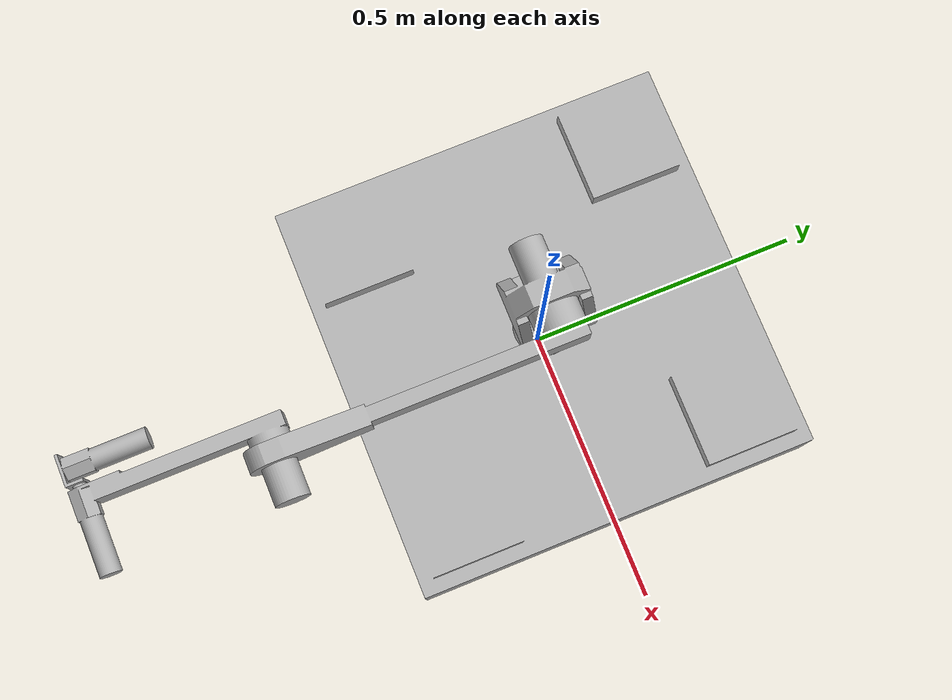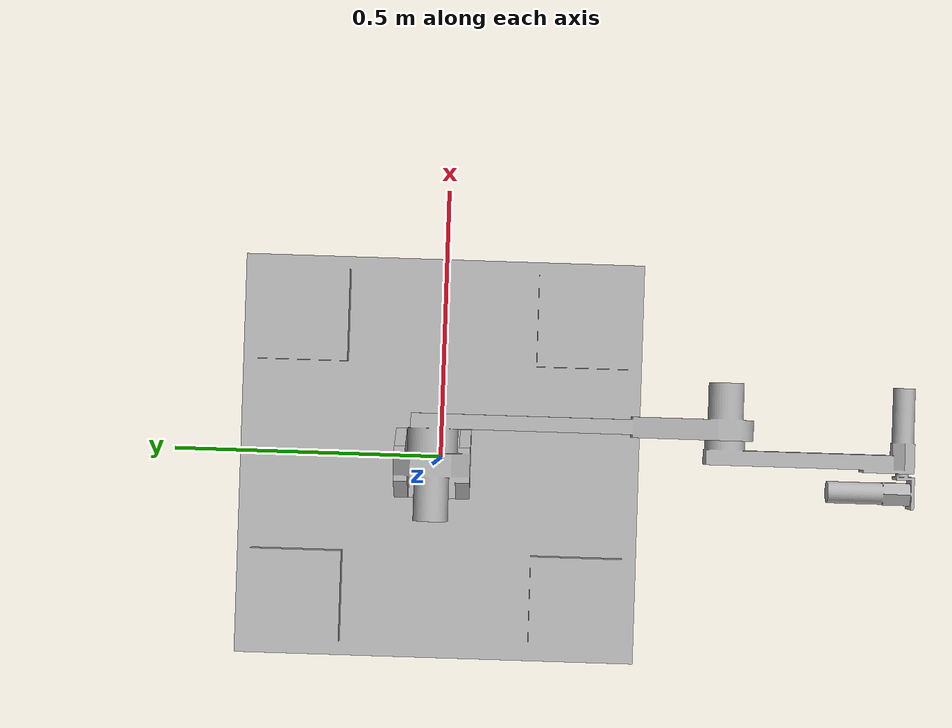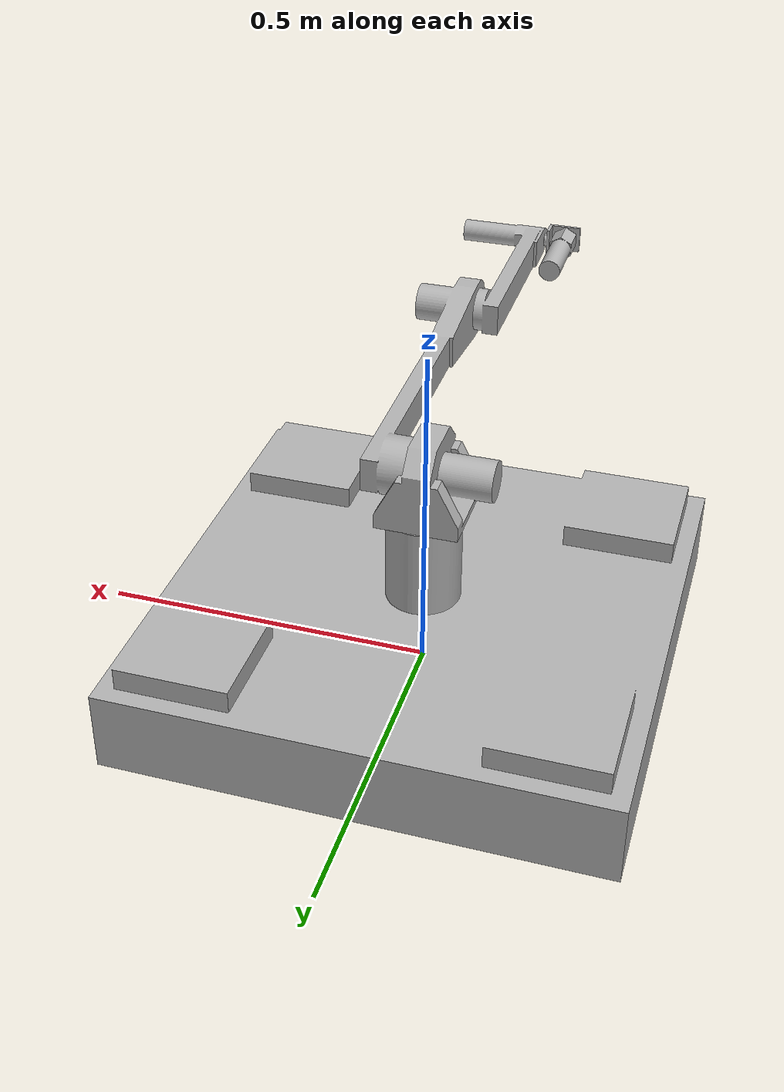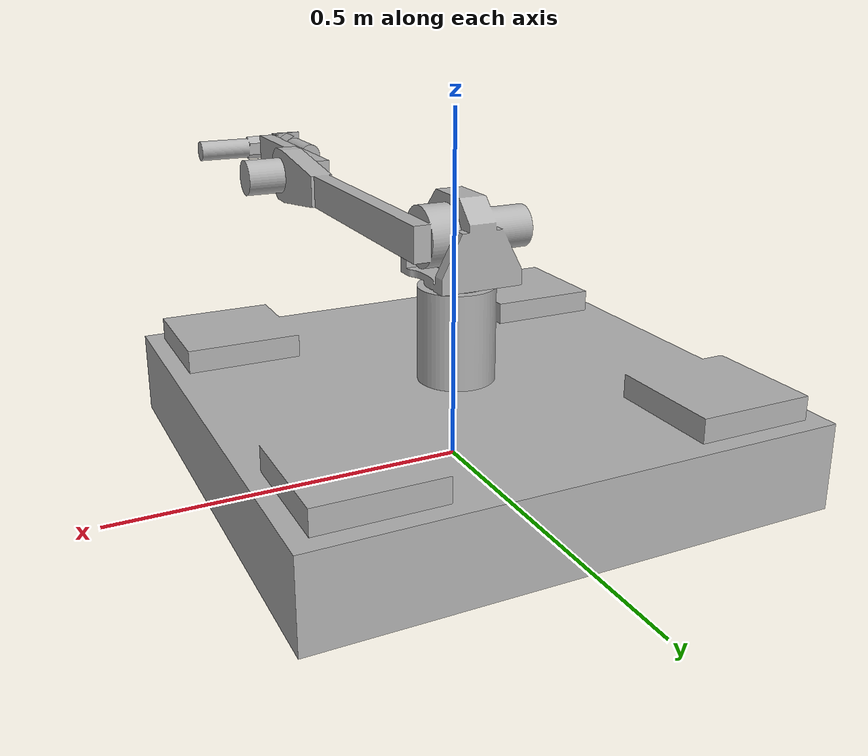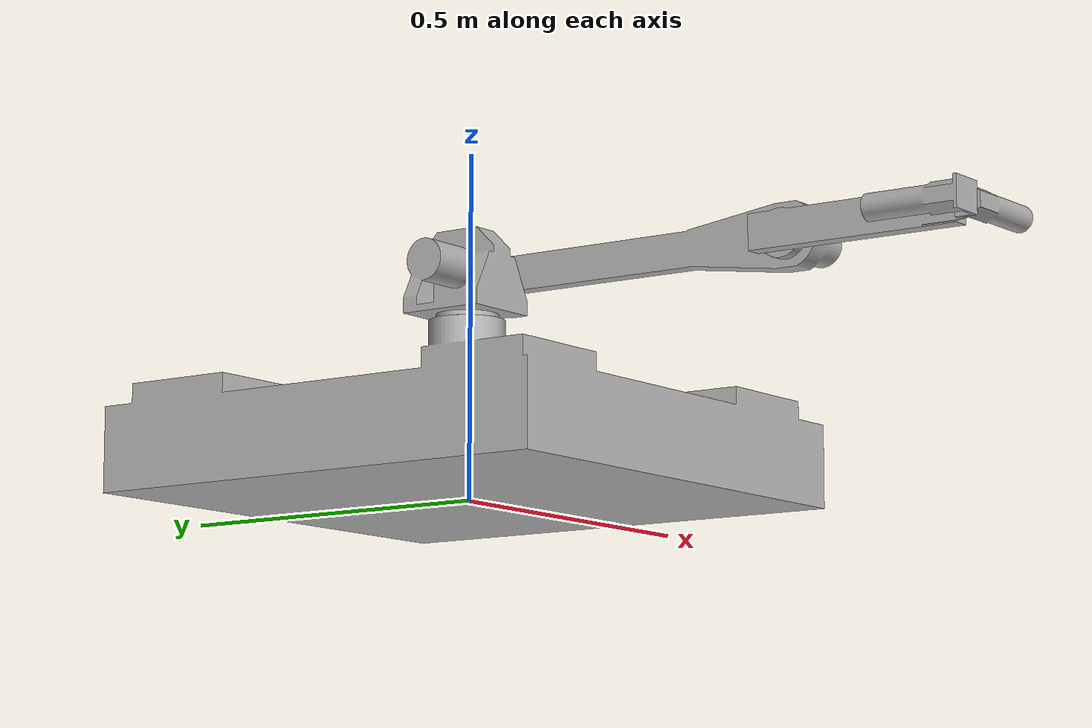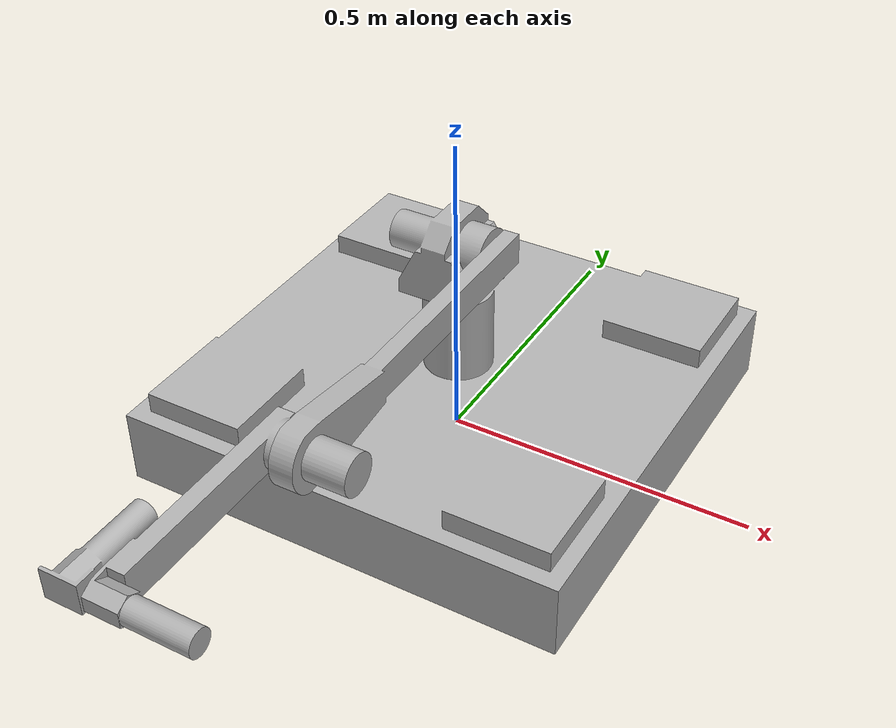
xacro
<?xml version="1.0" ?>
<robot name="very" xmlns:xacro="http://www.ros.org/wiki/xacro">

<xacro:include filename="$(find robotics_arm_urdf)/urdf/materials.xacro" />
<xacro:include filename="$(find robotics_arm_urdf)/urdf/very.trans" />
<xacro:include filename="$(find robotics_arm_urdf)/urdf/very.gazebo" />

<!-- Dummy root link to satisfy KDL (root link cannot have inertia) -->
<link name="base_root"/>

<link name="base_link">
  <inertial>
    <origin xyz="1.786500008006684e-05 0.00012165639228690033 0.06699175592851545" rpy="0 0 0"/>
    <mass value="535.8223914164653"/>
    <inertia ixx="24.551577" iyy="24.553882" izz="47.222961" ixy="1e-05" iyz="-0.008012" ixz="-0.000609"/>
  </inertial>
  <visual>
    <origin xyz="0 0 0" rpy="0 0 0"/>
    <geometry>
      <mesh filename="package://robotics_arm_urdf/meshes/base_link.stl" scale="0.001 0.001 0.001"/>
    </geometry>
    <material name="silver"/>
  </visual>
  <collision>
    <origin xyz="0 0 0" rpy="0 0 0"/>
    <geometry>
      <mesh filename="package://robotics_arm_urdf/meshes/base_link.stl" scale="0.001 0.001 0.001"/>
    </geometry>
  </collision>
</link>

<joint name="base_root_to_base_link" type="fixed">
  <origin xyz="0 0 0" rpy="0 0 0"/>
  <parent link="base_root"/>
  <child link="base_link"/>
</joint>

<link name="J2_1">
  <inertial>
    <origin xyz="-0.016991904377805584 -2.479257345889066e-07 0.05564737429303507" rpy="0 0 0"/>
    <mass value="8.725021578617188"/>
    <inertia ixx="0.020867" iyy="0.01847" izz="0.020756" ixy="0.0" iyz="0.0" ixz="0.001526"/>
  </inertial>
  <visual>
    <origin xyz="0.00014 -0.006362 -0.259291" rpy="0 0 0"/>
    <geometry>
      <mesh filename="package://robotics_arm_urdf/meshes/J2_1.stl" scale="0.001 0.001 0.001"/>
    </geometry>
    <material name="silver"/>
  </visual>
  <collision>
    <origin xyz="0.00014 -0.006362 -0.259291" rpy="0 0 0"/>
    <geometry>
      <mesh filename="package://robotics_arm_urdf/meshes/J2_1.stl" scale="0.001 0.001 0.001"/>
    </geometry>
  </collision>
</link>

<link name="J3_1">
  <inertial>
    <origin xyz="0.055032013453155115 -0.27922124726006753 1.224065103722083e-07" rpy="0 0 0"/>
    <mass value="11.34516891418952"/>
    <inertia ixx="0.466304" iyy="0.011006" izz="0.469118" ixy="0.033102" iyz="0.0" ixz="-0.0"/>
  </inertial>
  <visual>
    <origin xyz="-0.01486 -0.006362 -0.331291" rpy="0 0 0"/>
    <geometry>
      <mesh filename="package://robotics_arm_urdf/meshes/J3_1.stl" scale="0.001 0.001 0.001"/>
    </geometry>
    <material name="silver"/>
  </visual>
  <collision>
    <origin xyz="-0.01486 -0.006362 -0.331291" rpy="0 0 0"/>
    <geometry>
      <mesh filename="package://robotics_arm_urdf/meshes/J3_1.stl" scale="0.001 0.001 0.001"/>
    </geometry>
  </collision>
</link>

<link name="J4_1">
  <inertial>
    <origin xyz="-0.014361359821615675 -0.16199153769784758 1.2240513108663365e-07" rpy="0 0 0"/>
    <mass value="5.126352738450512"/>
    <inertia ixx="0.073281" iyy="0.006158" izz="0.077483" ixy="0.007898" iyz="-0.0" ixz="0.0"/>
  </inertial>
  <visual>
    <origin xyz="-0.05186 0.493638 -0.331291" rpy="0 0 0"/>
    <geometry>
      <mesh filename="package://robotics_arm_urdf/meshes/J4_1.stl" scale="0.001 0.001 0.001"/>
    </geometry>
    <material name="silver"/>
  </visual>
  <collision>
    <origin xyz="-0.05186 0.493638 -0.331291" rpy="0 0 0"/>
    <geometry>
      <mesh filename="package://robotics_arm_urdf/meshes/J4_1.stl" scale="0.001 0.001 0.001"/>
    </geometry>
  </collision>
</link>

<link name="J5_1">
  <inertial>
    <origin xyz="-0.0331204755365671 0.04815190305946215 1.2240129576568393e-07" rpy="0 0 0"/>
    <mass value="1.4049124718717072"/>
    <inertia ixx="0.002823" iyy="0.000321" izz="0.002868" ixy="9.3e-05" iyz="0.0" ixz="0.0"/>
  </inertial>
  <visual>
    <origin xyz="-0.003859 0.798113 -0.331291" rpy="0 0 0"/>
    <geometry>
      <mesh filename="package://robotics_arm_urdf/meshes/J5_1.stl" scale="0.001 0.001 0.001"/>
    </geometry>
    <material name="silver"/>
  </visual>
  <collision>
    <origin xyz="-0.003859 0.798113 -0.331291" rpy="0 0 0"/>
    <geometry>
      <mesh filename="package://robotics_arm_urdf/meshes/J5_1.stl" scale="0.001 0.001 0.001"/>
    </geometry>
  </collision>
</link>

<!-- 给 MoveIt/Servo 明确的关节上下限与速度上限，避免数值发散 -->
<joint name="joint1" type="revolute">
  <origin xyz="-0.00014 0.006362 0.259291" rpy="0 0 0"/>
  <parent link="base_link"/>
  <child link="J2_1"/>
  <axis xyz="0.0 0.0 1.0"/>
  <limit lower="-3.14159" upper="3.14159" effort="10.0" velocity="2.0"/>
</joint>

<joint name="joint2" type="revolute">
  <origin xyz="0.015 0.0 0.072" rpy="0 0 0"/>
  <parent link="J2_1"/>
  <child link="J3_1"/>
  <axis xyz="-1.0 -0.0 0.0"/>
  <limit lower="-3.14159" upper="3.14159" effort="10.0" velocity="2.0"/>
</joint>

<joint name="joint3" type="revolute">
  <origin xyz="0.037 -0.5 0.0" rpy="0 0 0"/>
  <parent link="J3_1"/>
  <child link="J4_1"/>
  <axis xyz="-1.0 -0.0 0.0"/>
  <limit lower="-3.14159" upper="3.14159" effort="10.0" velocity="2.0"/>
</joint>

<joint name="joint4" type="revolute">
  <origin xyz="-0.048001 -0.304475 0.0" rpy="0 0 0"/>
  <parent link="J4_1"/>
  <child link="J5_1"/>
  <axis xyz="1.0 0.0 -0.0"/>
  <limit lower="-3.14159" upper="3.14159" effort="10.0" velocity="2.0"/>
</joint>

</robot>

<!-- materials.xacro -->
<robot name="very" xmlns:xacro="http://www.ros.org/wiki/xacro" >

<material name="silver">
  <color rgba="0.700 0.700 0.700 1.000"/>
</material>

</robot>

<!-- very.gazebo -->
<robot name="very" xmlns:xacro="http://www.ros.org/wiki/xacro" >

<xacro:property name="body_color" value="Gazebo/Silver" />

<gazebo>
  <plugin name="control" filename="libgazebo_ros_control.so"/>
</gazebo>
<gazebo reference="base_link">
  <material>${body_color}</material>
  <mu1>0.2</mu1>
  <mu2>0.2</mu2>
  <selfCollide>true</selfCollide>
  <gravity>true</gravity>
</gazebo>

<gazebo reference="J2_1">
  <material>${body_color}</material>
  <mu1>0.2</mu1>
  <mu2>0.2</mu2>
  <selfCollide>true</selfCollide>
</gazebo>

<gazebo reference="J3_1">
  <material>${body_color}</material>
  <mu1>0.2</mu1>
  <mu2>0.2</mu2>
  <selfCollide>true</selfCollide>
</gazebo>

<gazebo reference="J4_1">
  <material>${body_color}</material>
  <mu1>0.2</mu1>
  <mu2>0.2</mu2>
  <selfCollide>true</selfCollide>
</gazebo>

<gazebo reference="J5_1">
  <material>${body_color}</material>
  <mu1>0.2</mu1>
  <mu2>0.2</mu2>
  <selfCollide>true</selfCollide>
</gazebo>

</robot>
